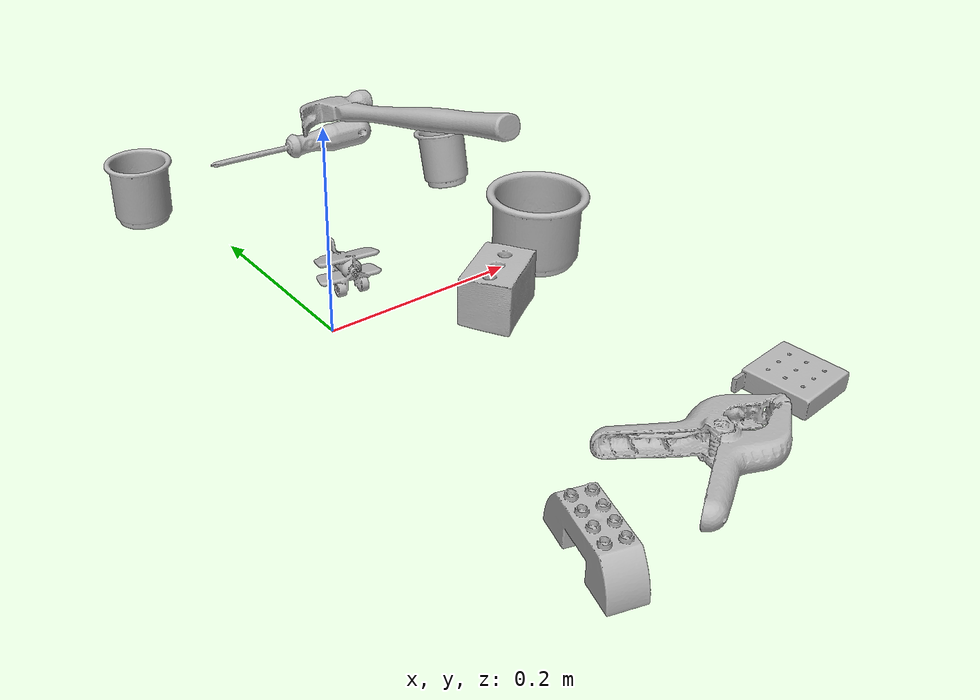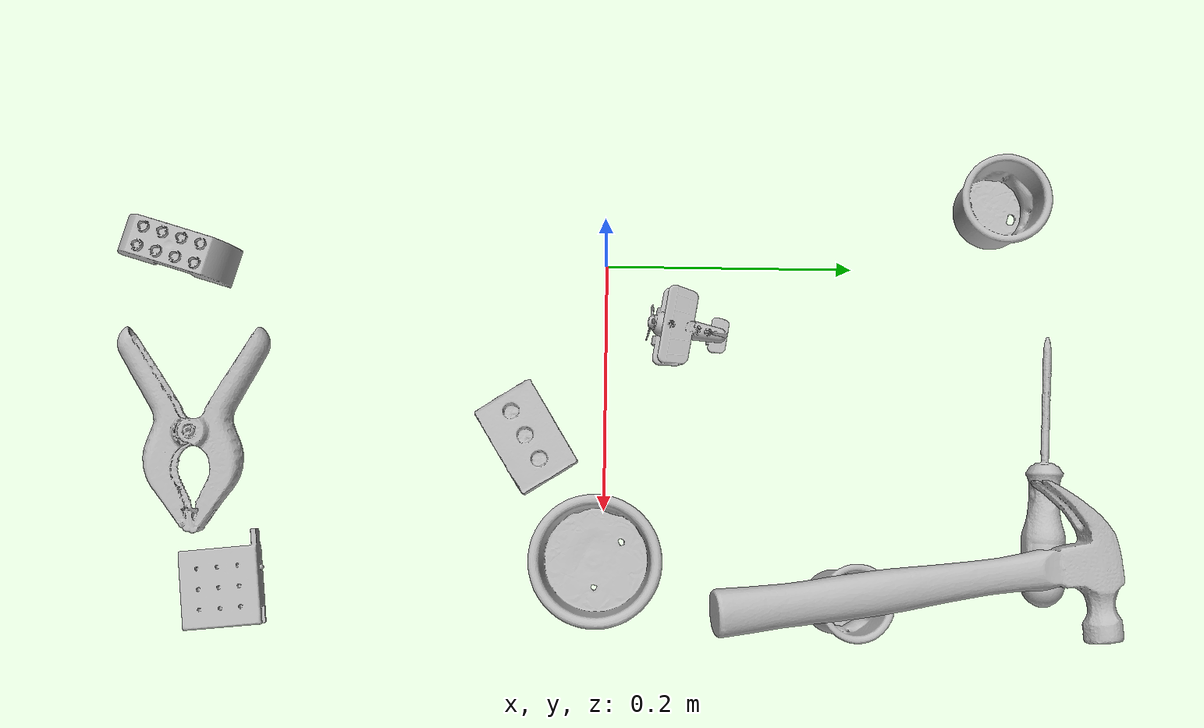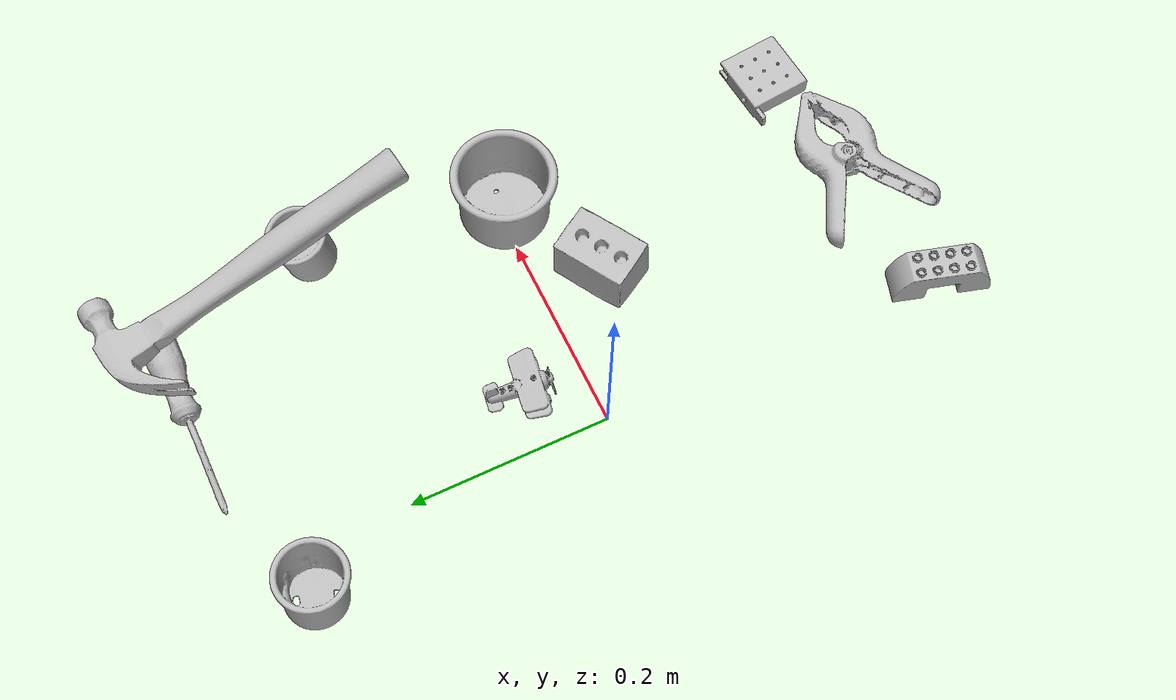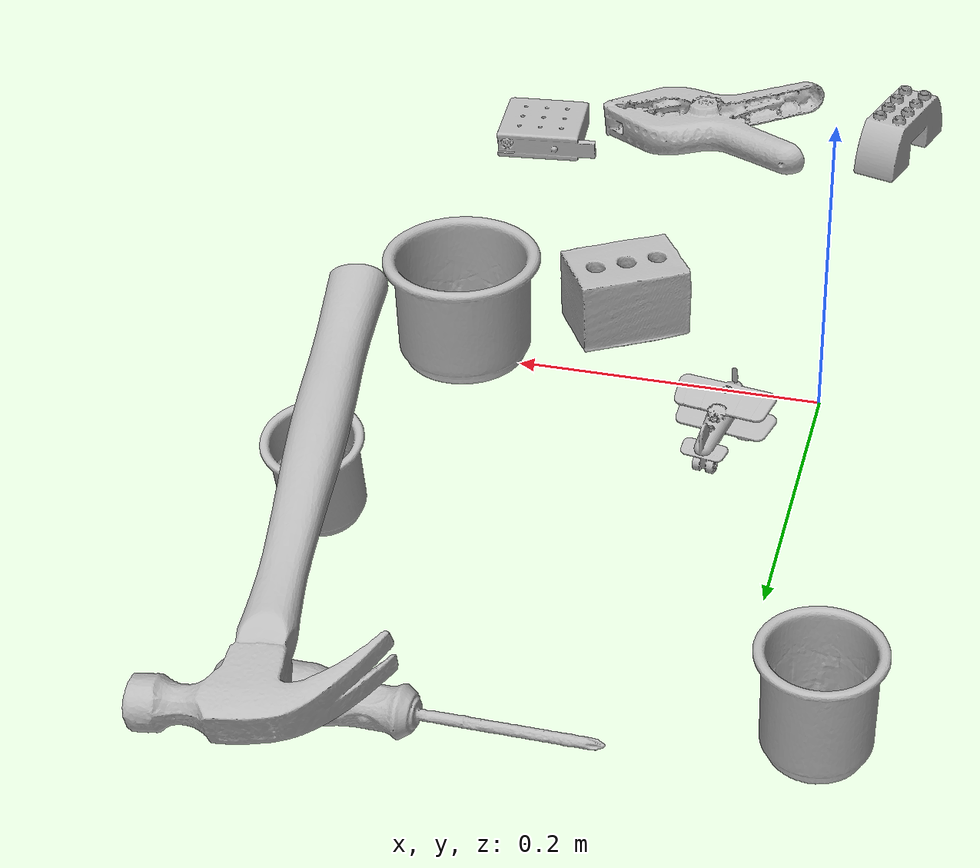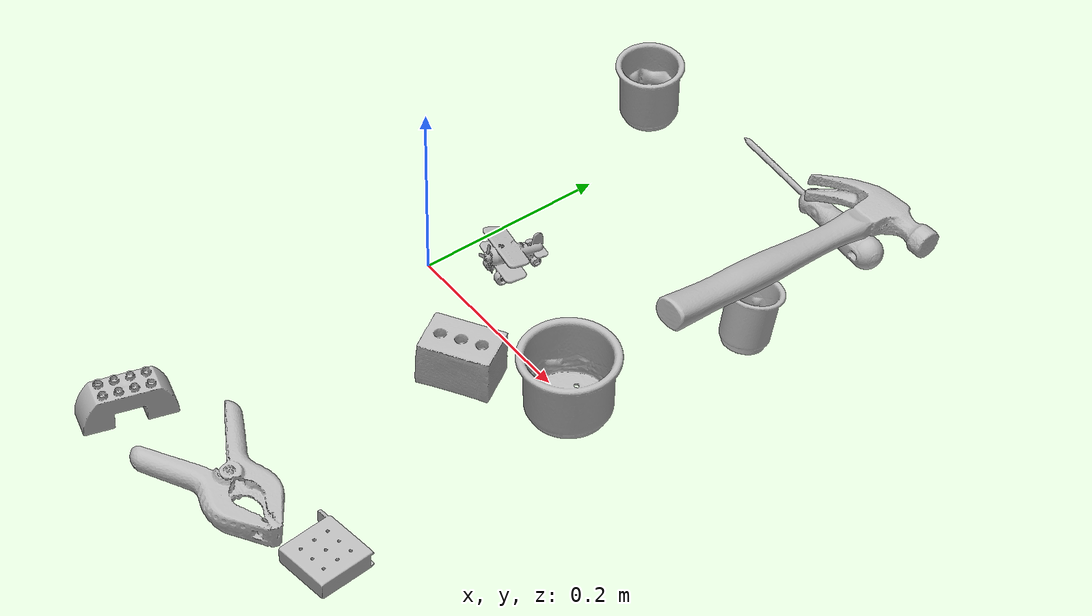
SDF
<sdf version="1.4">
  <world name="default">
    <light name="light1" type="point">
      <pose>0 0 1 0 0 0</pose>
      <diffuse>3 3 3 1</diffuse>
      <specular>3 3 3 1</specular>
    </light>
    <light name="light2" type="point">
      <pose>0 0.5 2 0 0 0</pose>
      <diffuse>1 1 1 1</diffuse>
      <specular>1 1 1 1</specular>
    </light>
    <light name="light3" type="point">
      <pose>0 0.5 2 0 0 0</pose>
      <diffuse>3 3 3 1</diffuse>
      <specular>3 3 3 1</specular>
    </light>
    <scene>
      <ambient>0.7 0.7 0.7</ambient>
    </scene>
    <model name="cup1">
      <link name="link_cup1">
        <collision name="default">
          <geometry>
            <mesh>
              <uri>model://j_cups/collision_meshes/collision.obj</uri>
              <scale>1.0 1.0 1.0</scale>
            </mesh>
          </geometry>
          <surface>
            <friction>
              <ode>
                <mu>0.5</mu>
                <mu2>0.5</mu2>
              </ode>
            </friction>
          <contact>
        <ode>
            <max_vel>0</max_vel>
            <min_depth>0.0001</min_depth>
            <kp>1e8</kp>
        </ode>
    </contact></surface>
        </collision>
        <visual name="default">
          <geometry>
            <mesh>
              <uri>model://j_cups/visual_meshes/visual.dae</uri>
              <scale>1.0 1.0 1.0</scale>
            </mesh>
          </geometry>
        </visual>
        <inertial>
          <mass>0.1112113818526268</mass>
          <pose>0.0006164852529764175 0.0005398975918069482 -0.0013479019980877638 0.030303955005909274 0.03757984422505388 0.4386955526072484</pose>
          <inertia>
            <ixx>0.00016329347</ixx>
            <iyy>0.00016499148</iyy>
            <izz>0.00018824349</izz>
            <ixy>0</ixy>
            <ixz>0</ixz>
            <iyz>0</iyz>
          </inertia>
        </inertial>
      </link>
      <pose>0.23913556337356567 -0.005620961077511311 0.03798900172114372 6.911990146907262e-08 6.072799730833618e-08 2.8084892207290277</pose>
    </model>
    <model name="cup2">
      <link name="link_cup2">
        <collision name="default">
          <geometry>
            <mesh>
              <uri>model://b_cups/collision_meshes/collision.obj</uri>
              <scale>1.0 1.0 1.0</scale>
            </mesh>
          </geometry>
          <surface>
            <friction>
              <ode>
                <mu>0.5</mu>
                <mu2>0.5</mu2>
              </ode>
            </friction>
          <contact>
        <ode>
            <max_vel>0</max_vel>
            <min_depth>0.0001</min_depth>
            <kp>1e8</kp>
        </ode>
    </contact></surface>
        </collision>
        <visual name="default">
          <geometry>
            <mesh>
              <uri>model://b_cups/visual_meshes/visual.dae</uri>
              <scale>1.0 1.0 1.0</scale>
            </mesh>
          </geometry>
        </visual>
        <inertial>
          <mass>0.040588438510894775</mass>
          <pose>0.0005182006862014532 0.001805859268642962 -0.001338181202299893 0.11356319114734177 0.03872522211554688 -0.34569586720892936</pose>
          <inertia>
            <ixx>2.6567977e-05</ixx>
            <iyy>2.6063572e-05</iyy>
            <izz>2.235645e-05</izz>
            <ixy>0</ixy>
            <ixz>0</ixz>
            <iyz>0</iyz>
          </inertia>
        </inertial>
      </link>
      <pose>0.2688722014427185 0.18953058123588562 0.03557296469807625 -0.10190392774302628 -0.19559201417729297 -1.0379169993595805</pose>
    </model>
    <model name="cup3">
      <link name="link_cup3">
        <collision name="default">
          <geometry>
            <mesh>
              <uri>model://d_cups/collision_meshes/collision.obj</uri>
              <scale>1.0 1.0 1.0</scale>
            </mesh>
          </geometry>
          <surface>
            <friction>
              <ode>
                <mu>0.5</mu>
                <mu2>0.5</mu2>
              </ode>
            </friction>
          <contact>
        <ode>
            <max_vel>0</max_vel>
            <min_depth>0.0001</min_depth>
            <kp>1e8</kp>
        </ode>
    </contact></surface>
        </collision>
        <visual name="default">
          <geometry>
            <mesh>
              <uri>model://d_cups/visual_meshes/visual.dae</uri>
              <scale>1.0 1.0 1.0</scale>
            </mesh>
          </geometry>
        </visual>
        <inertial>
          <mass>0.030152590945363045</mass>
          <pose>0.000806804746389389 0.0019117394695058465 -0.0022666517179459333 0.2401234305416289 -0.2470973002062907 0.5942515272324471</pose>
          <inertia>
            <ixx>2.5244808e-05</ixx>
            <iyy>2.517175e-05</iyy>
            <izz>2.2850849e-05</izz>
            <ixy>0</ixy>
            <ixz>0</ixz>
            <iyz>0</iyz>
          </inertia>
        </inertial>
      </link>
      <pose>-0.04724005609750748 0.31198838353157043 0.03465767577290535 -0.00023472144436508826 -0.0002638300333954467 0.7179209825385655</pose>
    </model>
    <model name="toy1">
      <link name="link_toy1">
        <collision name="default">
          <geometry>
            <mesh>
              <uri>model://e_lego_duplo/collision_meshes/collision.obj</uri>
              <scale>1.0 1.0 1.0</scale>
            </mesh>
          </geometry>
          <surface>
            <friction>
              <ode>
                <mu>0.5</mu>
                <mu2>0.5</mu2>
              </ode>
            </friction>
          <contact>
        <ode>
            <max_vel>0</max_vel>
            <min_depth>0.0001</min_depth>
            <kp>1e8</kp>
        </ode>
    </contact></surface>
        </collision>
        <visual name="default">
          <geometry>
            <mesh>
              <uri>model://e_lego_duplo/visual_meshes/visual.dae</uri>
              <scale>1.0 1.0 1.0</scale>
            </mesh>
          </geometry>
        </visual>
        <inertial>
          <mass>0.09282131493091583</mass>
          <pose>0.0003256045747548342 0.00023485456767957658 0.0019521460635587573 -0.022567664257634346 -6.825452093688492e-05 -0.007625138047361518</pose>
          <inertia>
            <ixx>1.9356308e-05</ixx>
            <iyy>7.944328e-05</iyy>
            <izz>7.736177e-05</izz>
            <ixy>0</ixy>
            <ixz>0</ixz>
            <iyz>0</iyz>
          </inertia>
        </inertial>
      </link>
      <pose>-0.006298262160271406 -0.3489755392074585 0.02180900238454342 2.5029012507294905e-07 -5.985609127398643e-08 1.2909771049921164</pose>
    </model>
    <model name="toy2">
      <link name="link_toy2">
        <collision name="default">
          <geometry>
            <mesh>
              <uri>model://nine_hole_peg_test/collision_meshes/collision.obj</uri>
              <scale>0.5 0.5 0.5</scale>
            </mesh>
          </geometry>
          <surface>
            <friction>
              <ode>
                <mu>0.5</mu>
                <mu2>0.5</mu2>
              </ode>
            </friction>
          <contact>
        <ode>
            <max_vel>0</max_vel>
            <min_depth>0.0001</min_depth>
            <kp>1e8</kp>
        </ode>
    </contact></surface>
        </collision>
        <visual name="default">
          <geometry>
            <mesh>
              <uri>model://nine_hole_peg_test/visual_meshes/visual.dae</uri>
              <scale>0.5 0.5 0.5</scale>
            </mesh>
          </geometry>
        </visual>
        <inertial>
          <mass>0.0661587193608284</mass>
          <pose>-0.002308693015947938 -0.0048238071613013744 1.3230345757619943e-05 -0.0014666794270044752 0.0007194176174711586 -0.6342418340283942</pose>
          <inertia>
            <ixx>2.5862508e-05</ixx>
            <iyy>2.4147552e-05</iyy>
            <izz>4.531874e-05</izz>
            <ixy>0</ixy>
            <ixz>0</ixz>
            <iyz>0</iyz>
          </inertia>
        </inertial>
      </link>
      <pose>0.259879469871521 -0.3022109270095825 0.010385498404502869 5.347949541545383e-09 1.3658390862448308e-09 1.6764665700029053</pose>
    </model>
    <model name="toy3">
      <link name="link_toy3">
        <collision name="default">
          <geometry>
            <mesh>
              <uri>model://foam_brick/collision_meshes/collision.obj</uri>
              <scale>1.0 1.0 1.0</scale>
            </mesh>
          </geometry>
          <surface>
            <friction>
              <ode>
                <mu>0.5</mu>
                <mu2>0.5</mu2>
              </ode>
            </friction>
          <contact>
        <ode>
            <max_vel>0</max_vel>
            <min_depth>0.0001</min_depth>
            <kp>1e8</kp>
        </ode>
    </contact></surface>
        </collision>
        <visual name="default">
          <geometry>
            <mesh>
              <uri>model://foam_brick/visual_meshes/visual.dae</uri>
              <scale>1.0 1.0 1.0</scale>
            </mesh>
          </geometry>
        </visual>
        <inertial>
          <mass>0.15239986777305603</mass>
          <pose>-0.00025224717683158815 0.0003458431747276336 -0.00025321010616607964 -0.29401565585717926 0.017274441097588973 -0.0007449887293440311</pose>
          <inertia>
            <ixx>6.6571105e-05</ixx>
            <iyy>0.00010628419</iyy>
            <izz>0.00010763494</izz>
            <ixy>0</ixy>
            <ixz>0</ixz>
            <iyz>0</iyz>
          </inertia>
        </inertial>
      </link>
      <pose>0.14242731034755707 -0.061876993626356125 0.025922788307070732 0.013417051979375446 0.0041524311953946465 -2.5914901303238067</pose>
    </model>
    <model name="toy4">
      <link name="link_toy4">
        <collision name="default">
          <geometry>
            <mesh>
              <uri>model://a_toy_airplane/collision_meshes/collision.obj</uri>
              <scale>0.25 0.25 0.25</scale>
            </mesh>
          </geometry>
          <surface>
            <friction>
              <ode>
                <mu>0.5</mu>
                <mu2>0.5</mu2>
              </ode>
            </friction>
          <contact>
        <ode>
            <max_vel>0</max_vel>
            <min_depth>0.0001</min_depth>
            <kp>1e8</kp>
        </ode>
    </contact></surface>
        </collision>
        <visual name="default">
          <geometry>
            <mesh>
              <uri>model://a_toy_airplane/visual_meshes/visual.dae</uri>
              <scale>0.25 0.25 0.25</scale>
            </mesh>
          </geometry>
        </visual>
        <inertial>
          <mass>0.01630575954914093</mass>
          <pose>0.006291272584348917 -0.0009268299327231944 -0.0002990612993016839 -0.012016942866631759 -0.1466350865210375 0.004149072887705313</pose>
          <inertia>
            <ixx>3.7008767e-06</ixx>
            <iyy>5.392928e-06</iyy>
            <izz>6.314456e-06</izz>
            <ixy>0</ixy>
            <ixz>0</ixz>
            <iyz>0</iyz>
          </inertia>
        </inertial>
      </link>
      <pose>0.054780468344688416 0.06562808901071548 0.023089811205863953 -0.00016350689633505238 -8.442619584143438e-06 -1.7341522903879067</pose>
    </model>
    <model name="hardware1">
      <link name="link_hardware1">
        <collision name="default">
          <geometry>
            <mesh>
              <uri>model://phillips_screwdriver/collision_meshes/collision.obj</uri>
              <scale>1.0 1.0 1.0</scale>
            </mesh>
          </geometry>
          <surface>
            <friction>
              <ode>
                <mu>0.5</mu>
                <mu2>0.5</mu2>
              </ode>
            </friction>
          <contact>
        <ode>
            <max_vel>0</max_vel>
            <min_depth>0.0001</min_depth>
            <kp>1e8</kp>
        </ode>
    </contact></surface>
        </collision>
        <visual name="default">
          <geometry>
            <mesh>
              <uri>model://phillips_screwdriver/visual_meshes/visual.dae</uri>
              <scale>1.0 1.0 1.0</scale>
            </mesh>
          </geometry>
        </visual>
        <inertial>
          <mass>0.05757145583629608</mass>
          <pose>-0.04777182266116142 0.001036230125464499 -0.000455554953077808 -0.1572215307256514 0.005850991069928943 -0.0021567397451199392</pose>
          <inertia>
            <ixx>6.764056e-06</ixx>
            <iyy>8.480946e-05</iyy>
            <izz>8.4881525e-05</izz>
            <ixy>0</ixy>
            <ixz>0</ixz>
            <iyz>0</iyz>
          </inertia>
        </inertial>
      </link>
      <pose>0.1662420779466629 0.3537274897098541 0.01836622692644596 0.08087144702347288 -0.019884648702299338 3.118572291857873</pose>
    </model>
    <model name="hardware2">
      <link name="link_hardware2">
        <collision name="default">
          <geometry>
            <mesh>
              <uri>model://hammer/collision_meshes/collision.obj</uri>
              <scale>1.0 1.0 1.0</scale>
            </mesh>
          </geometry>
          <surface>
            <friction>
              <ode>
                <mu>0.5</mu>
                <mu2>0.5</mu2>
              </ode>
            </friction>
          <contact>
        <ode>
            <max_vel>0</max_vel>
            <min_depth>0.0001</min_depth>
            <kp>1e8</kp>
        </ode>
    </contact></surface>
        </collision>
        <visual name="default">
          <geometry>
            <mesh>
              <uri>model://hammer/visual_meshes/visual.dae</uri>
              <scale>1.0 1.0 1.0</scale>
            </mesh>
          </geometry>
        </visual>
        <inertial>
          <mass>0.19043192267417908</mass>
          <pose>0.00941577646881342 -0.011892358772456646 -0.0001235063245985657 0.023155672419862355 -0.004792164441448863 -0.012760315407460211</pose>
          <inertia>
            <ixx>8.15718e-05</ixx>
            <iyy>0.0022103586</iyy>
            <izz>0.002273686</izz>
            <ixy>0</ixy>
            <ixz>0</ixz>
            <iyz>0</iyz>
          </inertia>
        </inertial>
      </link>
      <pose>0.24238961935043335 0.25379446148872375 0.06760813295841217 0.03790692722809599 0.22408340177956587 1.700506250117202</pose>
    </model>
    <model name="hardware3">
      <link name="link_hardware3">
        <collision name="default">
          <geometry>
            <mesh>
              <uri>model://large_clamp/collision_meshes/collision.obj</uri>
              <scale>1.0 1.0 1.0</scale>
            </mesh>
          </geometry>
          <surface>
            <friction>
              <ode>
                <mu>0.5</mu>
                <mu2>0.5</mu2>
              </ode>
            </friction>
          <contact>
        <ode>
            <max_vel>0</max_vel>
            <min_depth>0.0001</min_depth>
            <kp>1e8</kp>
        </ode>
    </contact></surface>
        </collision>
        <visual name="default">
          <geometry>
            <mesh>
              <uri>model://large_clamp/visual_meshes/visual.dae</uri>
              <scale>1.0 1.0 1.0</scale>
            </mesh>
          </geometry>
        </visual>
        <inertial>
          <mass>0.18636001646518707</mass>
          <pose>0.006369354669004679 0.0003585688828025013 -0.0001839799078879878 -0.0021330740505354343 0.009671591251539349 0.02663317297682702</pose>
          <inertia>
            <ixx>0.0001644205</ixx>
            <iyy>0.00031224336</iyy>
            <izz>0.00045169977</izz>
            <ixy>0</ixy>
            <ixz>0</ixz>
            <iyz>0</iyz>
          </inertia>
        </inertial>
      </link>
      <pose>0.14005544781684875 -0.3295872211456299 0.018503760918974876 -0.01164648554847826 0.04692995779558194 -0.005060033644618954</pose>
    </model>
  <physics type="ode">
      <max_contacts>50</max_contacts>
      <ode>
        <solver>
          <type>quick</type>
          <iters>75</iters>
        </solver>
        <constraints>
          <contact_max_correcting_vel>0</contact_max_correcting_vel>
          <contact_surface_layer>0</contact_surface_layer>
        </constraints>
      </ode>
    </physics></world>
</sdf>
